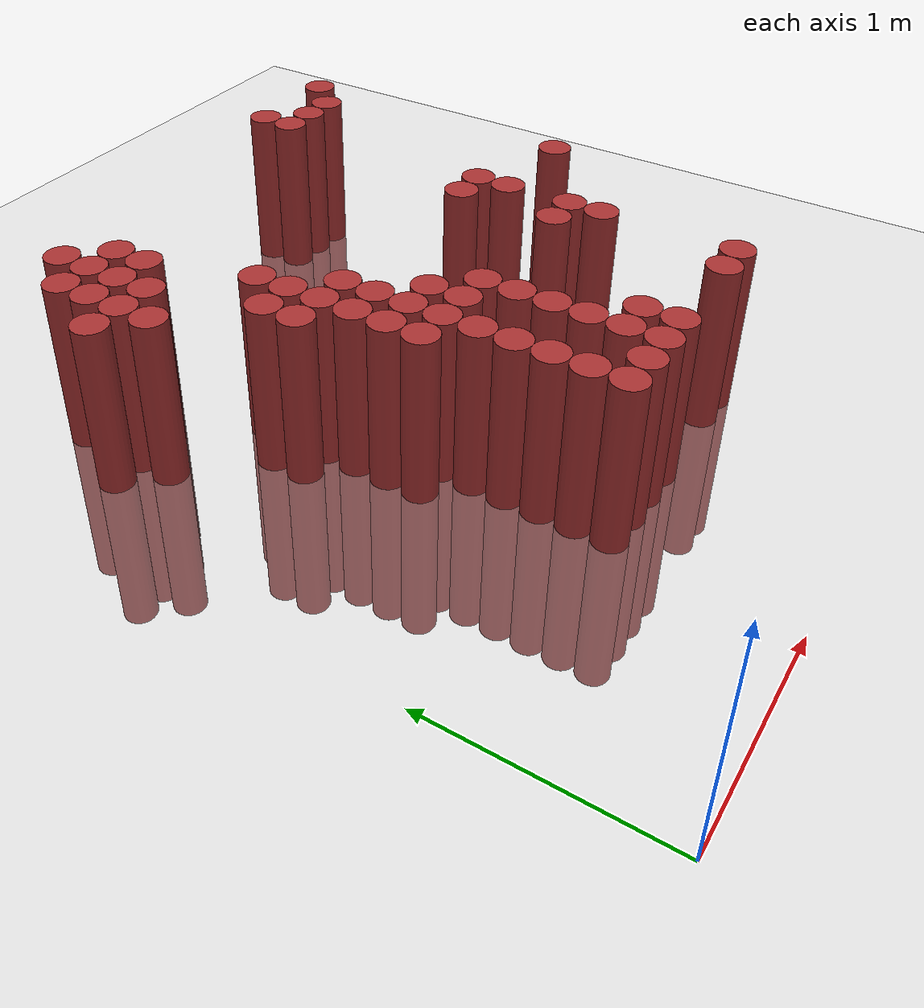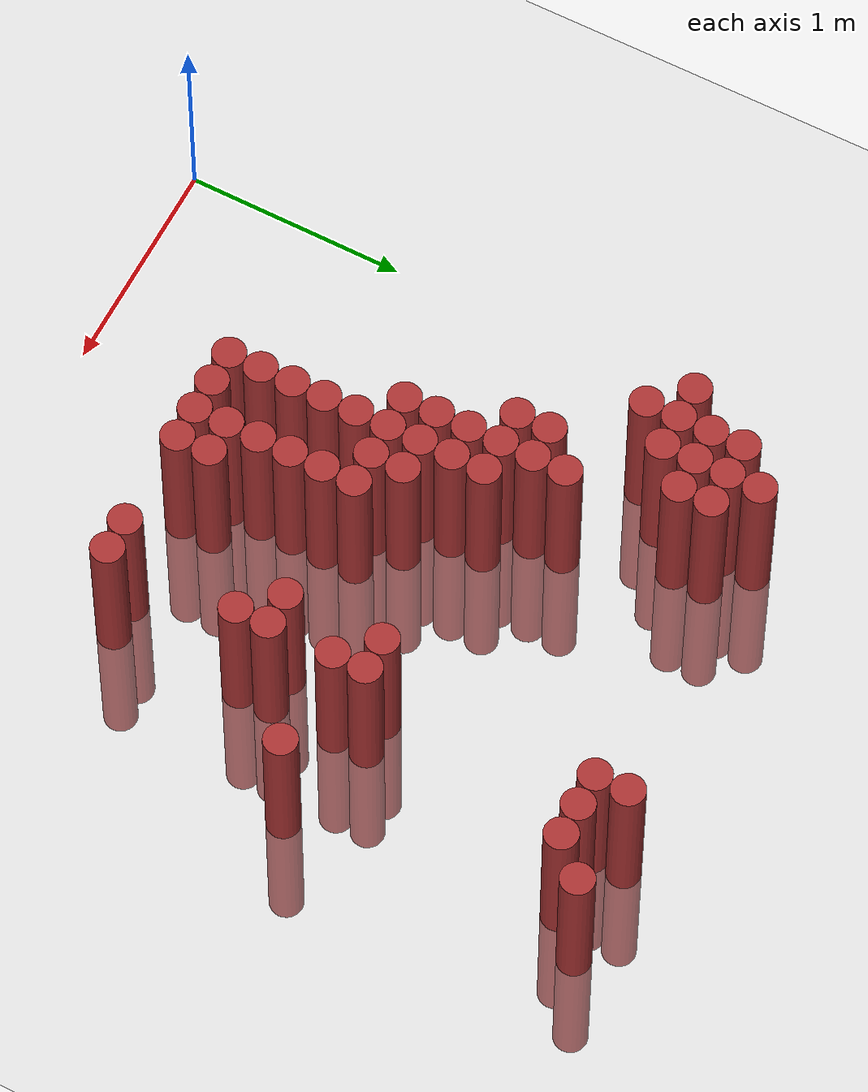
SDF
<sdf version="1.6">
 <world name="default">
  <model name="ground_plane">
   <static>1</static>
   <link name="link">
    <collision name="collision">
     <geometry><plane><normal>0 0 1</normal><size>100 100</size></plane></geometry>
     <surface><friction><ode><mu>100</mu><mu2>50</mu2></ode></friction></surface>
    </collision>
    <visual name="visual">
     <cast_shadows>0</cast_shadows>
     <geometry><plane><normal>0 0 1</normal><size>100 100</size></plane></geometry>
     <material>
      <script><uri>file://media/materials/scripts/gazebo.material</uri><name>Gazebo/Grey</name></script>
     </material>
    </visual>
   </link>
  </model>
  <model name="unit_cylinder_441">
   <static>1</static>
   <pose>0.325000 2.575000 0.000000 0.000000 0.000000 0.000000</pose>
   <link name="link">
    <inertial>
     <mass>1</mass>
     <inertia><ixx>0.145833</ixx><ixy>0</ixy><ixz>0</ixz><iyy>0.145833</iyy><iyz>0</iyz><izz>0.125</izz></inertia>
    </inertial>
    <collision name="collision">
     <geometry><cylinder><radius>0.075000</radius><length>1.5</length></cylinder></geometry>
    </collision>
    <visual name="visual">
     <geometry><cylinder><radius>0.075000</radius><length>1.5</length></cylinder></geometry>
     <material>
      <ambient>0.648000 0.192000 0.192000 1</ambient>
      <diffuse>0.648000 0.192000 0.192000 1</diffuse>
     </material>
     <material>
      <script><name>Gazebo/Grey</name><uri>file://media/materials/scripts/gazebo.material</uri></script>
     </material>
    </visual>
   </link>
  </model>
  <model name="unit_cylinder_442">
   <static>1</static>
   <pose>0.475000 2.425000 0.000000 0.000000 0.000000 0.000000</pose>
   <link name="link">
    <inertial>
     <mass>1</mass>
     <inertia><ixx>0.145833</ixx><ixy>0</ixy><ixz>0</ixz><iyy>0.145833</iyy><iyz>0</iyz><izz>0.125</izz></inertia>
    </inertial>
    <collision name="collision">
     <geometry><cylinder><radius>0.075000</radius><length>1.5</length></cylinder></geometry>
    </collision>
    <visual name="visual">
     <geometry><cylinder><radius>0.075000</radius><length>1.5</length></cylinder></geometry>
     <material>
      <ambient>0.648000 0.192000 0.192000 1</ambient>
      <diffuse>0.648000 0.192000 0.192000 1</diffuse>
     </material>
     <material>
      <script><name>Gazebo/Grey</name><uri>file://media/materials/scripts/gazebo.material</uri></script>
     </material>
    </visual>
   </link>
  </model>
  <model name="unit_cylinder_443">
   <static>1</static>
   <pose>0.475000 2.575000 0.000000 0.000000 0.000000 0.000000</pose>
   <link name="link">
    <inertial>
     <mass>1</mass>
     <inertia><ixx>0.145833</ixx><ixy>0</ixy><ixz>0</ixz><iyy>0.145833</iyy><iyz>0</iyz><izz>0.125</izz></inertia>
    </inertial>
    <collision name="collision">
     <geometry><cylinder><radius>0.075000</radius><length>1.5</length></cylinder></geometry>
    </collision>
    <visual name="visual">
     <geometry><cylinder><radius>0.075000</radius><length>1.5</length></cylinder></geometry>
     <material>
      <ambient>0.648000 0.192000 0.192000 1</ambient>
      <diffuse>0.648000 0.192000 0.192000 1</diffuse>
     </material>
     <material>
      <script><name>Gazebo/Grey</name><uri>file://media/materials/scripts/gazebo.material</uri></script>
     </material>
    </visual>
   </link>
  </model>
  <model name="unit_cylinder_444">
   <static>1</static>
   <pose>0.475000 2.725000 0.000000 0.000000 0.000000 0.000000</pose>
   <link name="link">
    <inertial>
     <mass>1</mass>
     <inertia><ixx>0.145833</ixx><ixy>0</ixy><ixz>0</ixz><iyy>0.145833</iyy><iyz>0</iyz><izz>0.125</izz></inertia>
    </inertial>
    <collision name="collision">
     <geometry><cylinder><radius>0.075000</radius><length>1.5</length></cylinder></geometry>
    </collision>
    <visual name="visual">
     <geometry><cylinder><radius>0.075000</radius><length>1.5</length></cylinder></geometry>
     <material>
      <ambient>0.648000 0.192000 0.192000 1</ambient>
      <diffuse>0.648000 0.192000 0.192000 1</diffuse>
     </material>
     <material>
      <script><name>Gazebo/Grey</name><uri>file://media/materials/scripts/gazebo.material</uri></script>
     </material>
    </visual>
   </link>
  </model>
  <model name="unit_cylinder_445">
   <static>1</static>
   <pose>0.475000 2.875000 0.000000 0.000000 0.000000 0.000000</pose>
   <link name="link">
    <inertial>
     <mass>1</mass>
     <inertia><ixx>0.145833</ixx><ixy>0</ixy><ixz>0</ixz><iyy>0.145833</iyy><iyz>0</iyz><izz>0.125</izz></inertia>
    </inertial>
    <collision name="collision">
     <geometry><cylinder><radius>0.075000</radius><length>1.5</length></cylinder></geometry>
    </collision>
    <visual name="visual">
     <geometry><cylinder><radius>0.075000</radius><length>1.5</length></cylinder></geometry>
     <material>
      <ambient>0.648000 0.192000 0.192000 1</ambient>
      <diffuse>0.648000 0.192000 0.192000 1</diffuse>
     </material>
     <material>
      <script><name>Gazebo/Grey</name><uri>file://media/materials/scripts/gazebo.material</uri></script>
     </material>
    </visual>
   </link>
  </model>
  <model name="unit_cylinder_447">
   <static>1</static>
   <pose>0.625000 2.575000 0.000000 0.000000 0.000000 0.000000</pose>
   <link name="link">
    <inertial>
     <mass>1</mass>
     <inertia><ixx>0.145833</ixx><ixy>0</ixy><ixz>0</ixz><iyy>0.145833</iyy><iyz>0</iyz><izz>0.125</izz></inertia>
    </inertial>
    <collision name="collision">
     <geometry><cylinder><radius>0.075000</radius><length>1.5</length></cylinder></geometry>
    </collision>
    <visual name="visual">
     <geometry><cylinder><radius>0.075000</radius><length>1.5</length></cylinder></geometry>
     <material>
      <ambient>0.648000 0.192000 0.192000 1</ambient>
      <diffuse>0.648000 0.192000 0.192000 1</diffuse>
     </material>
     <material>
      <script><name>Gazebo/Grey</name><uri>file://media/materials/scripts/gazebo.material</uri></script>
     </material>
    </visual>
   </link>
  </model>
  <model name="unit_cylinder_448">
   <static>1</static>
   <pose>0.625000 2.725000 0.000000 0.000000 0.000000 0.000000</pose>
   <link name="link">
    <inertial>
     <mass>1</mass>
     <inertia><ixx>0.145833</ixx><ixy>0</ixy><ixz>0</ixz><iyy>0.145833</iyy><iyz>0</iyz><izz>0.125</izz></inertia>
    </inertial>
    <collision name="collision">
     <geometry><cylinder><radius>0.075000</radius><length>1.5</length></cylinder></geometry>
    </collision>
    <visual name="visual">
     <geometry><cylinder><radius>0.075000</radius><length>1.5</length></cylinder></geometry>
     <material>
      <ambient>0.648000 0.192000 0.192000 1</ambient>
      <diffuse>0.648000 0.192000 0.192000 1</diffuse>
     </material>
     <material>
      <script><name>Gazebo/Grey</name><uri>file://media/materials/scripts/gazebo.material</uri></script>
     </material>
    </visual>
   </link>
  </model>
  <model name="unit_cylinder_449">
   <static>1</static>
   <pose>0.625000 2.875000 0.000000 0.000000 0.000000 0.000000</pose>
   <link name="link">
    <inertial>
     <mass>1</mass>
     <inertia><ixx>0.145833</ixx><ixy>0</ixy><ixz>0</ixz><iyy>0.145833</iyy><iyz>0</iyz><izz>0.125</izz></inertia>
    </inertial>
    <collision name="collision">
     <geometry><cylinder><radius>0.075000</radius><length>1.5</length></cylinder></geometry>
    </collision>
    <visual name="visual">
     <geometry><cylinder><radius>0.075000</radius><length>1.5</length></cylinder></geometry>
     <material>
      <ambient>0.648000 0.192000 0.192000 1</ambient>
      <diffuse>0.648000 0.192000 0.192000 1</diffuse>
     </material>
     <material>
      <script><name>Gazebo/Grey</name><uri>file://media/materials/scripts/gazebo.material</uri></script>
     </material>
    </visual>
   </link>
  </model>
  <model name="unit_cylinder_450">
   <static>1</static>
   <pose>0.625000 3.025000 0.000000 0.000000 0.000000 0.000000</pose>
   <link name="link">
    <inertial>
     <mass>1</mass>
     <inertia><ixx>0.145833</ixx><ixy>0</ixy><ixz>0</ixz><iyy>0.145833</iyy><iyz>0</iyz><izz>0.125</izz></inertia>
    </inertial>
    <collision name="collision">
     <geometry><cylinder><radius>0.075000</radius><length>1.5</length></cylinder></geometry>
    </collision>
    <visual name="visual">
     <geometry><cylinder><radius>0.075000</radius><length>1.5</length></cylinder></geometry>
     <material>
      <ambient>0.648000 0.192000 0.192000 1</ambient>
      <diffuse>0.648000 0.192000 0.192000 1</diffuse>
     </material>
     <material>
      <script><name>Gazebo/Grey</name><uri>file://media/materials/scripts/gazebo.material</uri></script>
     </material>
    </visual>
   </link>
  </model>
  <model name="unit_cylinder_453">
   <static>1</static>
   <pose>0.775000 1.975000 0.000000 0.000000 0.000000 0.000000</pose>
   <link name="link">
    <inertial>
     <mass>1</mass>
     <inertia><ixx>0.145833</ixx><ixy>0</ixy><ixz>0</ixz><iyy>0.145833</iyy><iyz>0</iyz><izz>0.125</izz></inertia>
    </inertial>
    <collision name="collision">
     <geometry><cylinder><radius>0.075000</radius><length>1.5</length></cylinder></geometry>
    </collision>
    <visual name="visual">
     <geometry><cylinder><radius>0.075000</radius><length>1.5</length></cylinder></geometry>
     <material>
      <ambient>0.648000 0.192000 0.192000 1</ambient>
      <diffuse>0.648000 0.192000 0.192000 1</diffuse>
     </material>
     <material>
      <script><name>Gazebo/Grey</name><uri>file://media/materials/scripts/gazebo.material</uri></script>
     </material>
    </visual>
   </link>
  </model>
  <model name="unit_cylinder_454">
   <static>1</static>
   <pose>0.775000 2.125000 0.000000 0.000000 0.000000 0.000000</pose>
   <link name="link">
    <inertial>
     <mass>1</mass>
     <inertia><ixx>0.145833</ixx><ixy>0</ixy><ixz>0</ixz><iyy>0.145833</iyy><iyz>0</iyz><izz>0.125</izz></inertia>
    </inertial>
    <collision name="collision">
     <geometry><cylinder><radius>0.075000</radius><length>1.5</length></cylinder></geometry>
    </collision>
    <visual name="visual">
     <geometry><cylinder><radius>0.075000</radius><length>1.5</length></cylinder></geometry>
     <material>
      <ambient>0.648000 0.192000 0.192000 1</ambient>
      <diffuse>0.648000 0.192000 0.192000 1</diffuse>
     </material>
     <material>
      <script><name>Gazebo/Grey</name><uri>file://media/materials/scripts/gazebo.material</uri></script>
     </material>
    </visual>
   </link>
  </model>
  <model name="unit_cylinder_455">
   <static>1</static>
   <pose>0.775000 2.725000 0.000000 0.000000 0.000000 0.000000</pose>
   <link name="link">
    <inertial>
     <mass>1</mass>
     <inertia><ixx>0.145833</ixx><ixy>0</ixy><ixz>0</ixz><iyy>0.145833</iyy><iyz>0</iyz><izz>0.125</izz></inertia>
    </inertial>
    <collision name="collision">
     <geometry><cylinder><radius>0.075000</radius><length>1.5</length></cylinder></geometry>
    </collision>
    <visual name="visual">
     <geometry><cylinder><radius>0.075000</radius><length>1.5</length></cylinder></geometry>
     <material>
      <ambient>0.648000 0.192000 0.192000 1</ambient>
      <diffuse>0.648000 0.192000 0.192000 1</diffuse>
     </material>
     <material>
      <script><name>Gazebo/Grey</name><uri>file://media/materials/scripts/gazebo.material</uri></script>
     </material>
    </visual>
   </link>
  </model>
  <model name="unit_cylinder_456">
   <static>1</static>
   <pose>0.775000 2.875000 0.000000 0.000000 0.000000 0.000000</pose>
   <link name="link">
    <inertial>
     <mass>1</mass>
     <inertia><ixx>0.145833</ixx><ixy>0</ixy><ixz>0</ixz><iyy>0.145833</iyy><iyz>0</iyz><izz>0.125</izz></inertia>
    </inertial>
    <collision name="collision">
     <geometry><cylinder><radius>0.075000</radius><length>1.5</length></cylinder></geometry>
    </collision>
    <visual name="visual">
     <geometry><cylinder><radius>0.075000</radius><length>1.5</length></cylinder></geometry>
     <material>
      <ambient>0.648000 0.192000 0.192000 1</ambient>
      <diffuse>0.648000 0.192000 0.192000 1</diffuse>
     </material>
     <material>
      <script><name>Gazebo/Grey</name><uri>file://media/materials/scripts/gazebo.material</uri></script>
     </material>
    </visual>
   </link>
  </model>
  <model name="unit_cylinder_462">
   <static>1</static>
   <pose>0.925000 1.525000 0.000000 0.000000 0.000000 0.000000</pose>
   <link name="link">
    <inertial>
     <mass>1</mass>
     <inertia><ixx>0.145833</ixx><ixy>0</ixy><ixz>0</ixz><iyy>0.145833</iyy><iyz>0</iyz><izz>0.125</izz></inertia>
    </inertial>
    <collision name="collision">
     <geometry><cylinder><radius>0.075000</radius><length>1.5</length></cylinder></geometry>
    </collision>
    <visual name="visual">
     <geometry><cylinder><radius>0.075000</radius><length>1.5</length></cylinder></geometry>
     <material>
      <ambient>0.648000 0.192000 0.192000 1</ambient>
      <diffuse>0.648000 0.192000 0.192000 1</diffuse>
     </material>
     <material>
      <script><name>Gazebo/Grey</name><uri>file://media/materials/scripts/gazebo.material</uri></script>
     </material>
    </visual>
   </link>
  </model>
  <model name="unit_cylinder_463">
   <static>1</static>
   <pose>0.925000 1.675000 0.000000 0.000000 0.000000 0.000000</pose>
   <link name="link">
    <inertial>
     <mass>1</mass>
     <inertia><ixx>0.145833</ixx><ixy>0</ixy><ixz>0</ixz><iyy>0.145833</iyy><iyz>0</iyz><izz>0.125</izz></inertia>
    </inertial>
    <collision name="collision">
     <geometry><cylinder><radius>0.075000</radius><length>1.5</length></cylinder></geometry>
    </collision>
    <visual name="visual">
     <geometry><cylinder><radius>0.075000</radius><length>1.5</length></cylinder></geometry>
     <material>
      <ambient>0.648000 0.192000 0.192000 1</ambient>
      <diffuse>0.648000 0.192000 0.192000 1</diffuse>
     </material>
     <material>
      <script><name>Gazebo/Grey</name><uri>file://media/materials/scripts/gazebo.material</uri></script>
     </material>
    </visual>
   </link>
  </model>
  <model name="unit_cylinder_464">
   <static>1</static>
   <pose>0.925000 1.825000 0.000000 0.000000 0.000000 0.000000</pose>
   <link name="link">
    <inertial>
     <mass>1</mass>
     <inertia><ixx>0.145833</ixx><ixy>0</ixy><ixz>0</ixz><iyy>0.145833</iyy><iyz>0</iyz><izz>0.125</izz></inertia>
    </inertial>
    <collision name="collision">
     <geometry><cylinder><radius>0.075000</radius><length>1.5</length></cylinder></geometry>
    </collision>
    <visual name="visual">
     <geometry><cylinder><radius>0.075000</radius><length>1.5</length></cylinder></geometry>
     <material>
      <ambient>0.648000 0.192000 0.192000 1</ambient>
      <diffuse>0.648000 0.192000 0.192000 1</diffuse>
     </material>
     <material>
      <script><name>Gazebo/Grey</name><uri>file://media/materials/scripts/gazebo.material</uri></script>
     </material>
    </visual>
   </link>
  </model>
  <model name="unit_cylinder_465">
   <static>1</static>
   <pose>0.925000 1.975000 0.000000 0.000000 0.000000 0.000000</pose>
   <link name="link">
    <inertial>
     <mass>1</mass>
     <inertia><ixx>0.145833</ixx><ixy>0</ixy><ixz>0</ixz><iyy>0.145833</iyy><iyz>0</iyz><izz>0.125</izz></inertia>
    </inertial>
    <collision name="collision">
     <geometry><cylinder><radius>0.075000</radius><length>1.5</length></cylinder></geometry>
    </collision>
    <visual name="visual">
     <geometry><cylinder><radius>0.075000</radius><length>1.5</length></cylinder></geometry>
     <material>
      <ambient>0.648000 0.192000 0.192000 1</ambient>
      <diffuse>0.648000 0.192000 0.192000 1</diffuse>
     </material>
     <material>
      <script><name>Gazebo/Grey</name><uri>file://media/materials/scripts/gazebo.material</uri></script>
     </material>
    </visual>
   </link>
  </model>
  <model name="unit_cylinder_466">
   <static>1</static>
   <pose>0.925000 2.125000 0.000000 0.000000 0.000000 0.000000</pose>
   <link name="link">
    <inertial>
     <mass>1</mass>
     <inertia><ixx>0.145833</ixx><ixy>0</ixy><ixz>0</ixz><iyy>0.145833</iyy><iyz>0</iyz><izz>0.125</izz></inertia>
    </inertial>
    <collision name="collision">
     <geometry><cylinder><radius>0.075000</radius><length>1.5</length></cylinder></geometry>
    </collision>
    <visual name="visual">
     <geometry><cylinder><radius>0.075000</radius><length>1.5</length></cylinder></geometry>
     <material>
      <ambient>0.648000 0.192000 0.192000 1</ambient>
      <diffuse>0.648000 0.192000 0.192000 1</diffuse>
     </material>
     <material>
      <script><name>Gazebo/Grey</name><uri>file://media/materials/scripts/gazebo.material</uri></script>
     </material>
    </visual>
   </link>
  </model>
  <model name="unit_cylinder_467">
   <static>1</static>
   <pose>0.925000 2.275000 0.000000 0.000000 0.000000 0.000000</pose>
   <link name="link">
    <inertial>
     <mass>1</mass>
     <inertia><ixx>0.145833</ixx><ixy>0</ixy><ixz>0</ixz><iyy>0.145833</iyy><iyz>0</iyz><izz>0.125</izz></inertia>
    </inertial>
    <collision name="collision">
     <geometry><cylinder><radius>0.075000</radius><length>1.5</length></cylinder></geometry>
    </collision>
    <visual name="visual">
     <geometry><cylinder><radius>0.075000</radius><length>1.5</length></cylinder></geometry>
     <material>
      <ambient>0.648000 0.192000 0.192000 1</ambient>
      <diffuse>0.648000 0.192000 0.192000 1</diffuse>
     </material>
     <material>
      <script><name>Gazebo/Grey</name><uri>file://media/materials/scripts/gazebo.material</uri></script>
     </material>
    </visual>
   </link>
  </model>
  <model name="unit_cylinder_479">
   <static>1</static>
   <pose>1.075000 0.775000 0.000000 0.000000 0.000000 0.000000</pose>
   <link name="link">
    <inertial>
     <mass>1</mass>
     <inertia><ixx>0.145833</ixx><ixy>0</ixy><ixz>0</ixz><iyy>0.145833</iyy><iyz>0</iyz><izz>0.125</izz></inertia>
    </inertial>
    <collision name="collision">
     <geometry><cylinder><radius>0.075000</radius><length>1.5</length></cylinder></geometry>
    </collision>
    <visual name="visual">
     <geometry><cylinder><radius>0.075000</radius><length>1.5</length></cylinder></geometry>
     <material>
      <ambient>0.648000 0.192000 0.192000 1</ambient>
      <diffuse>0.648000 0.192000 0.192000 1</diffuse>
     </material>
     <material>
      <script><name>Gazebo/Grey</name><uri>file://media/materials/scripts/gazebo.material</uri></script>
     </material>
    </visual>
   </link>
  </model>
  <model name="unit_cylinder_480">
   <static>1</static>
   <pose>1.075000 0.925000 0.000000 0.000000 0.000000 0.000000</pose>
   <link name="link">
    <inertial>
     <mass>1</mass>
     <inertia><ixx>0.145833</ixx><ixy>0</ixy><ixz>0</ixz><iyy>0.145833</iyy><iyz>0</iyz><izz>0.125</izz></inertia>
    </inertial>
    <collision name="collision">
     <geometry><cylinder><radius>0.075000</radius><length>1.5</length></cylinder></geometry>
    </collision>
    <visual name="visual">
     <geometry><cylinder><radius>0.075000</radius><length>1.5</length></cylinder></geometry>
     <material>
      <ambient>0.648000 0.192000 0.192000 1</ambient>
      <diffuse>0.648000 0.192000 0.192000 1</diffuse>
     </material>
     <material>
      <script><name>Gazebo/Grey</name><uri>file://media/materials/scripts/gazebo.material</uri></script>
     </material>
    </visual>
   </link>
  </model>
  <model name="unit_cylinder_481">
   <static>1</static>
   <pose>1.075000 1.075000 0.000000 0.000000 0.000000 0.000000</pose>
   <link name="link">
    <inertial>
     <mass>1</mass>
     <inertia><ixx>0.145833</ixx><ixy>0</ixy><ixz>0</ixz><iyy>0.145833</iyy><iyz>0</iyz><izz>0.125</izz></inertia>
    </inertial>
    <collision name="collision">
     <geometry><cylinder><radius>0.075000</radius><length>1.5</length></cylinder></geometry>
    </collision>
    <visual name="visual">
     <geometry><cylinder><radius>0.075000</radius><length>1.5</length></cylinder></geometry>
     <material>
      <ambient>0.648000 0.192000 0.192000 1</ambient>
      <diffuse>0.648000 0.192000 0.192000 1</diffuse>
     </material>
     <material>
      <script><name>Gazebo/Grey</name><uri>file://media/materials/scripts/gazebo.material</uri></script>
     </material>
    </visual>
   </link>
  </model>
  <model name="unit_cylinder_482">
   <static>1</static>
   <pose>1.075000 1.225000 0.000000 0.000000 0.000000 0.000000</pose>
   <link name="link">
    <inertial>
     <mass>1</mass>
     <inertia><ixx>0.145833</ixx><ixy>0</ixy><ixz>0</ixz><iyy>0.145833</iyy><iyz>0</iyz><izz>0.125</izz></inertia>
    </inertial>
    <collision name="collision">
     <geometry><cylinder><radius>0.075000</radius><length>1.5</length></cylinder></geometry>
    </collision>
    <visual name="visual">
     <geometry><cylinder><radius>0.075000</radius><length>1.5</length></cylinder></geometry>
     <material>
      <ambient>0.648000 0.192000 0.192000 1</ambient>
      <diffuse>0.648000 0.192000 0.192000 1</diffuse>
     </material>
     <material>
      <script><name>Gazebo/Grey</name><uri>file://media/materials/scripts/gazebo.material</uri></script>
     </material>
    </visual>
   </link>
  </model>
  <model name="unit_cylinder_483">
   <static>1</static>
   <pose>1.075000 1.375000 0.000000 0.000000 0.000000 0.000000</pose>
   <link name="link">
    <inertial>
     <mass>1</mass>
     <inertia><ixx>0.145833</ixx><ixy>0</ixy><ixz>0</ixz><iyy>0.145833</iyy><iyz>0</iyz><izz>0.125</izz></inertia>
    </inertial>
    <collision name="collision">
     <geometry><cylinder><radius>0.075000</radius><length>1.5</length></cylinder></geometry>
    </collision>
    <visual name="visual">
     <geometry><cylinder><radius>0.075000</radius><length>1.5</length></cylinder></geometry>
     <material>
      <ambient>0.648000 0.192000 0.192000 1</ambient>
      <diffuse>0.648000 0.192000 0.192000 1</diffuse>
     </material>
     <material>
      <script><name>Gazebo/Grey</name><uri>file://media/materials/scripts/gazebo.material</uri></script>
     </material>
    </visual>
   </link>
  </model>
  <model name="unit_cylinder_484">
   <static>1</static>
   <pose>1.075000 1.525000 0.000000 0.000000 0.000000 0.000000</pose>
   <link name="link">
    <inertial>
     <mass>1</mass>
     <inertia><ixx>0.145833</ixx><ixy>0</ixy><ixz>0</ixz><iyy>0.145833</iyy><iyz>0</iyz><izz>0.125</izz></inertia>
    </inertial>
    <collision name="collision">
     <geometry><cylinder><radius>0.075000</radius><length>1.5</length></cylinder></geometry>
    </collision>
    <visual name="visual">
     <geometry><cylinder><radius>0.075000</radius><length>1.5</length></cylinder></geometry>
     <material>
      <ambient>0.648000 0.192000 0.192000 1</ambient>
      <diffuse>0.648000 0.192000 0.192000 1</diffuse>
     </material>
     <material>
      <script><name>Gazebo/Grey</name><uri>file://media/materials/scripts/gazebo.material</uri></script>
     </material>
    </visual>
   </link>
  </model>
  <model name="unit_cylinder_485">
   <static>1</static>
   <pose>1.075000 1.675000 0.000000 0.000000 0.000000 0.000000</pose>
   <link name="link">
    <inertial>
     <mass>1</mass>
     <inertia><ixx>0.145833</ixx><ixy>0</ixy><ixz>0</ixz><iyy>0.145833</iyy><iyz>0</iyz><izz>0.125</izz></inertia>
    </inertial>
    <collision name="collision">
     <geometry><cylinder><radius>0.075000</radius><length>1.5</length></cylinder></geometry>
    </collision>
    <visual name="visual">
     <geometry><cylinder><radius>0.075000</radius><length>1.5</length></cylinder></geometry>
     <material>
      <ambient>0.648000 0.192000 0.192000 1</ambient>
      <diffuse>0.648000 0.192000 0.192000 1</diffuse>
     </material>
     <material>
      <script><name>Gazebo/Grey</name><uri>file://media/materials/scripts/gazebo.material</uri></script>
     </material>
    </visual>
   </link>
  </model>
  <model name="unit_cylinder_486">
   <static>1</static>
   <pose>1.075000 1.825000 0.000000 0.000000 0.000000 0.000000</pose>
   <link name="link">
    <inertial>
     <mass>1</mass>
     <inertia><ixx>0.145833</ixx><ixy>0</ixy><ixz>0</ixz><iyy>0.145833</iyy><iyz>0</iyz><izz>0.125</izz></inertia>
    </inertial>
    <collision name="collision">
     <geometry><cylinder><radius>0.075000</radius><length>1.5</length></cylinder></geometry>
    </collision>
    <visual name="visual">
     <geometry><cylinder><radius>0.075000</radius><length>1.5</length></cylinder></geometry>
     <material>
      <ambient>0.648000 0.192000 0.192000 1</ambient>
      <diffuse>0.648000 0.192000 0.192000 1</diffuse>
     </material>
     <material>
      <script><name>Gazebo/Grey</name><uri>file://media/materials/scripts/gazebo.material</uri></script>
     </material>
    </visual>
   </link>
  </model>
  <model name="unit_cylinder_487">
   <static>1</static>
   <pose>1.075000 1.975000 0.000000 0.000000 0.000000 0.000000</pose>
   <link name="link">
    <inertial>
     <mass>1</mass>
     <inertia><ixx>0.145833</ixx><ixy>0</ixy><ixz>0</ixz><iyy>0.145833</iyy><iyz>0</iyz><izz>0.125</izz></inertia>
    </inertial>
    <collision name="collision">
     <geometry><cylinder><radius>0.075000</radius><length>1.5</length></cylinder></geometry>
    </collision>
    <visual name="visual">
     <geometry><cylinder><radius>0.075000</radius><length>1.5</length></cylinder></geometry>
     <material>
      <ambient>0.648000 0.192000 0.192000 1</ambient>
      <diffuse>0.648000 0.192000 0.192000 1</diffuse>
     </material>
     <material>
      <script><name>Gazebo/Grey</name><uri>file://media/materials/scripts/gazebo.material</uri></script>
     </material>
    </visual>
   </link>
  </model>
  <model name="unit_cylinder_497">
   <static>1</static>
   <pose>1.225000 0.775000 0.000000 0.000000 0.000000 0.000000</pose>
   <link name="link">
    <inertial>
     <mass>1</mass>
     <inertia><ixx>0.145833</ixx><ixy>0</ixy><ixz>0</ixz><iyy>0.145833</iyy><iyz>0</iyz><izz>0.125</izz></inertia>
    </inertial>
    <collision name="collision">
     <geometry><cylinder><radius>0.075000</radius><length>1.5</length></cylinder></geometry>
    </collision>
    <visual name="visual">
     <geometry><cylinder><radius>0.075000</radius><length>1.5</length></cylinder></geometry>
     <material>
      <ambient>0.648000 0.192000 0.192000 1</ambient>
      <diffuse>0.648000 0.192000 0.192000 1</diffuse>
     </material>
     <material>
      <script><name>Gazebo/Grey</name><uri>file://media/materials/scripts/gazebo.material</uri></script>
     </material>
    </visual>
   </link>
  </model>
  <model name="unit_cylinder_498">
   <static>1</static>
   <pose>1.225000 1.525000 0.000000 0.000000 0.000000 0.000000</pose>
   <link name="link">
    <inertial>
     <mass>1</mass>
     <inertia><ixx>0.145833</ixx><ixy>0</ixy><ixz>0</ixz><iyy>0.145833</iyy><iyz>0</iyz><izz>0.125</izz></inertia>
    </inertial>
    <collision name="collision">
     <geometry><cylinder><radius>0.075000</radius><length>1.5</length></cylinder></geometry>
    </collision>
    <visual name="visual">
     <geometry><cylinder><radius>0.075000</radius><length>1.5</length></cylinder></geometry>
     <material>
      <ambient>0.648000 0.192000 0.192000 1</ambient>
      <diffuse>0.648000 0.192000 0.192000 1</diffuse>
     </material>
     <material>
      <script><name>Gazebo/Grey</name><uri>file://media/materials/scripts/gazebo.material</uri></script>
     </material>
    </visual>
   </link>
  </model>
  <model name="unit_cylinder_499">
   <static>1</static>
   <pose>1.225000 1.675000 0.000000 0.000000 0.000000 0.000000</pose>
   <link name="link">
    <inertial>
     <mass>1</mass>
     <inertia><ixx>0.145833</ixx><ixy>0</ixy><ixz>0</ixz><iyy>0.145833</iyy><iyz>0</iyz><izz>0.125</izz></inertia>
    </inertial>
    <collision name="collision">
     <geometry><cylinder><radius>0.075000</radius><length>1.5</length></cylinder></geometry>
    </collision>
    <visual name="visual">
     <geometry><cylinder><radius>0.075000</radius><length>1.5</length></cylinder></geometry>
     <material>
      <ambient>0.648000 0.192000 0.192000 1</ambient>
      <diffuse>0.648000 0.192000 0.192000 1</diffuse>
     </material>
     <material>
      <script><name>Gazebo/Grey</name><uri>file://media/materials/scripts/gazebo.material</uri></script>
     </material>
    </visual>
   </link>
  </model>
  <model name="unit_cylinder_505">
   <static>1</static>
   <pose>1.375000 0.775000 0.000000 0.000000 0.000000 0.000000</pose>
   <link name="link">
    <inertial>
     <mass>1</mass>
     <inertia><ixx>0.145833</ixx><ixy>0</ixy><ixz>0</ixz><iyy>0.145833</iyy><iyz>0</iyz><izz>0.125</izz></inertia>
    </inertial>
    <collision name="collision">
     <geometry><cylinder><radius>0.075000</radius><length>1.5</length></cylinder></geometry>
    </collision>
    <visual name="visual">
     <geometry><cylinder><radius>0.075000</radius><length>1.5</length></cylinder></geometry>
     <material>
      <ambient>0.648000 0.192000 0.192000 1</ambient>
      <diffuse>0.648000 0.192000 0.192000 1</diffuse>
     </material>
     <material>
      <script><name>Gazebo/Grey</name><uri>file://media/materials/scripts/gazebo.material</uri></script>
     </material>
    </visual>
   </link>
  </model>
  <model name="unit_cylinder_506">
   <static>1</static>
   <pose>1.375000 0.925000 0.000000 0.000000 0.000000 0.000000</pose>
   <link name="link">
    <inertial>
     <mass>1</mass>
     <inertia><ixx>0.145833</ixx><ixy>0</ixy><ixz>0</ixz><iyy>0.145833</iyy><iyz>0</iyz><izz>0.125</izz></inertia>
    </inertial>
    <collision name="collision">
     <geometry><cylinder><radius>0.075000</radius><length>1.5</length></cylinder></geometry>
    </collision>
    <visual name="visual">
     <geometry><cylinder><radius>0.075000</radius><length>1.5</length></cylinder></geometry>
     <material>
      <ambient>0.648000 0.192000 0.192000 1</ambient>
      <diffuse>0.648000 0.192000 0.192000 1</diffuse>
     </material>
     <material>
      <script><name>Gazebo/Grey</name><uri>file://media/materials/scripts/gazebo.material</uri></script>
     </material>
    </visual>
   </link>
  </model>
  <model name="unit_cylinder_507">
   <static>1</static>
   <pose>1.375000 1.075000 0.000000 0.000000 0.000000 0.000000</pose>
   <link name="link">
    <inertial>
     <mass>1</mass>
     <inertia><ixx>0.145833</ixx><ixy>0</ixy><ixz>0</ixz><iyy>0.145833</iyy><iyz>0</iyz><izz>0.125</izz></inertia>
    </inertial>
    <collision name="collision">
     <geometry><cylinder><radius>0.075000</radius><length>1.5</length></cylinder></geometry>
    </collision>
    <visual name="visual">
     <geometry><cylinder><radius>0.075000</radius><length>1.5</length></cylinder></geometry>
     <material>
      <ambient>0.648000 0.192000 0.192000 1</ambient>
      <diffuse>0.648000 0.192000 0.192000 1</diffuse>
     </material>
     <material>
      <script><name>Gazebo/Grey</name><uri>file://media/materials/scripts/gazebo.material</uri></script>
     </material>
    </visual>
   </link>
  </model>
  <model name="unit_cylinder_508">
   <static>1</static>
   <pose>1.375000 1.225000 0.000000 0.000000 0.000000 0.000000</pose>
   <link name="link">
    <inertial>
     <mass>1</mass>
     <inertia><ixx>0.145833</ixx><ixy>0</ixy><ixz>0</ixz><iyy>0.145833</iyy><iyz>0</iyz><izz>0.125</izz></inertia>
    </inertial>
    <collision name="collision">
     <geometry><cylinder><radius>0.075000</radius><length>1.5</length></cylinder></geometry>
    </collision>
    <visual name="visual">
     <geometry><cylinder><radius>0.075000</radius><length>1.5</length></cylinder></geometry>
     <material>
      <ambient>0.648000 0.192000 0.192000 1</ambient>
      <diffuse>0.648000 0.192000 0.192000 1</diffuse>
     </material>
     <material>
      <script><name>Gazebo/Grey</name><uri>file://media/materials/scripts/gazebo.material</uri></script>
     </material>
    </visual>
   </link>
  </model>
  <model name="unit_cylinder_509">
   <static>1</static>
   <pose>1.375000 1.375000 0.000000 0.000000 0.000000 0.000000</pose>
   <link name="link">
    <inertial>
     <mass>1</mass>
     <inertia><ixx>0.145833</ixx><ixy>0</ixy><ixz>0</ixz><iyy>0.145833</iyy><iyz>0</iyz><izz>0.125</izz></inertia>
    </inertial>
    <collision name="collision">
     <geometry><cylinder><radius>0.075000</radius><length>1.5</length></cylinder></geometry>
    </collision>
    <visual name="visual">
     <geometry><cylinder><radius>0.075000</radius><length>1.5</length></cylinder></geometry>
     <material>
      <ambient>0.648000 0.192000 0.192000 1</ambient>
      <diffuse>0.648000 0.192000 0.192000 1</diffuse>
     </material>
     <material>
      <script><name>Gazebo/Grey</name><uri>file://media/materials/scripts/gazebo.material</uri></script>
     </material>
    </visual>
   </link>
  </model>
  <model name="unit_cylinder_510">
   <static>1</static>
   <pose>1.375000 1.525000 0.000000 0.000000 0.000000 0.000000</pose>
   <link name="link">
    <inertial>
     <mass>1</mass>
     <inertia><ixx>0.145833</ixx><ixy>0</ixy><ixz>0</ixz><iyy>0.145833</iyy><iyz>0</iyz><izz>0.125</izz></inertia>
    </inertial>
    <collision name="collision">
     <geometry><cylinder><radius>0.075000</radius><length>1.5</length></cylinder></geometry>
    </collision>
    <visual name="visual">
     <geometry><cylinder><radius>0.075000</radius><length>1.5</length></cylinder></geometry>
     <material>
      <ambient>0.648000 0.192000 0.192000 1</ambient>
      <diffuse>0.648000 0.192000 0.192000 1</diffuse>
     </material>
     <material>
      <script><name>Gazebo/Grey</name><uri>file://media/materials/scripts/gazebo.material</uri></script>
     </material>
    </visual>
   </link>
  </model>
  <model name="unit_cylinder_514">
   <static>1</static>
   <pose>1.525000 0.775000 0.000000 0.000000 0.000000 0.000000</pose>
   <link name="link">
    <inertial>
     <mass>1</mass>
     <inertia><ixx>0.145833</ixx><ixy>0</ixy><ixz>0</ixz><iyy>0.145833</iyy><iyz>0</iyz><izz>0.125</izz></inertia>
    </inertial>
    <collision name="collision">
     <geometry><cylinder><radius>0.075000</radius><length>1.5</length></cylinder></geometry>
    </collision>
    <visual name="visual">
     <geometry><cylinder><radius>0.075000</radius><length>1.5</length></cylinder></geometry>
     <material>
      <ambient>0.648000 0.192000 0.192000 1</ambient>
      <diffuse>0.648000 0.192000 0.192000 1</diffuse>
     </material>
     <material>
      <script><name>Gazebo/Grey</name><uri>file://media/materials/scripts/gazebo.material</uri></script>
     </material>
    </visual>
   </link>
  </model>
  <model name="unit_cylinder_515">
   <static>1</static>
   <pose>1.525000 0.925000 0.000000 0.000000 0.000000 0.000000</pose>
   <link name="link">
    <inertial>
     <mass>1</mass>
     <inertia><ixx>0.145833</ixx><ixy>0</ixy><ixz>0</ixz><iyy>0.145833</iyy><iyz>0</iyz><izz>0.125</izz></inertia>
    </inertial>
    <collision name="collision">
     <geometry><cylinder><radius>0.075000</radius><length>1.5</length></cylinder></geometry>
    </collision>
    <visual name="visual">
     <geometry><cylinder><radius>0.075000</radius><length>1.5</length></cylinder></geometry>
     <material>
      <ambient>0.648000 0.192000 0.192000 1</ambient>
      <diffuse>0.648000 0.192000 0.192000 1</diffuse>
     </material>
     <material>
      <script><name>Gazebo/Grey</name><uri>file://media/materials/scripts/gazebo.material</uri></script>
     </material>
    </visual>
   </link>
  </model>
  <model name="unit_cylinder_537">
   <static>1</static>
   <pose>1.975000 0.775000 0.000000 0.000000 0.000000 0.000000</pose>
   <link name="link">
    <inertial>
     <mass>1</mass>
     <inertia><ixx>0.145833</ixx><ixy>0</ixy><ixz>0</ixz><iyy>0.145833</iyy><iyz>0</iyz><izz>0.125</izz></inertia>
    </inertial>
    <collision name="collision">
     <geometry><cylinder><radius>0.075000</radius><length>1.5</length></cylinder></geometry>
    </collision>
    <visual name="visual">
     <geometry><cylinder><radius>0.075000</radius><length>1.5</length></cylinder></geometry>
     <material>
      <ambient>0.648000 0.192000 0.192000 1</ambient>
      <diffuse>0.648000 0.192000 0.192000 1</diffuse>
     </material>
     <material>
      <script><name>Gazebo/Grey</name><uri>file://media/materials/scripts/gazebo.material</uri></script>
     </material>
    </visual>
   </link>
  </model>
  <model name="unit_cylinder_538">
   <static>1</static>
   <pose>1.975000 1.525000 0.000000 0.000000 0.000000 0.000000</pose>
   <link name="link">
    <inertial>
     <mass>1</mass>
     <inertia><ixx>0.145833</ixx><ixy>0</ixy><ixz>0</ixz><iyy>0.145833</iyy><iyz>0</iyz><izz>0.125</izz></inertia>
    </inertial>
    <collision name="collision">
     <geometry><cylinder><radius>0.075000</radius><length>1.5</length></cylinder></geometry>
    </collision>
    <visual name="visual">
     <geometry><cylinder><radius>0.075000</radius><length>1.5</length></cylinder></geometry>
     <material>
      <ambient>0.648000 0.192000 0.192000 1</ambient>
      <diffuse>0.648000 0.192000 0.192000 1</diffuse>
     </material>
     <material>
      <script><name>Gazebo/Grey</name><uri>file://media/materials/scripts/gazebo.material</uri></script>
     </material>
    </visual>
   </link>
  </model>
  <model name="unit_cylinder_539">
   <static>1</static>
   <pose>1.975000 1.975000 0.000000 0.000000 0.000000 0.000000</pose>
   <link name="link">
    <inertial>
     <mass>1</mass>
     <inertia><ixx>0.145833</ixx><ixy>0</ixy><ixz>0</ixz><iyy>0.145833</iyy><iyz>0</iyz><izz>0.125</izz></inertia>
    </inertial>
    <collision name="collision">
     <geometry><cylinder><radius>0.075000</radius><length>1.5</length></cylinder></geometry>
    </collision>
    <visual name="visual">
     <geometry><cylinder><radius>0.075000</radius><length>1.5</length></cylinder></geometry>
     <material>
      <ambient>0.648000 0.192000 0.192000 1</ambient>
      <diffuse>0.648000 0.192000 0.192000 1</diffuse>
     </material>
     <material>
      <script><name>Gazebo/Grey</name><uri>file://media/materials/scripts/gazebo.material</uri></script>
     </material>
    </visual>
   </link>
  </model>
  <model name="unit_cylinder_550">
   <static>1</static>
   <pose>2.125000 0.775000 0.000000 0.000000 0.000000 0.000000</pose>
   <link name="link">
    <inertial>
     <mass>1</mass>
     <inertia><ixx>0.145833</ixx><ixy>0</ixy><ixz>0</ixz><iyy>0.145833</iyy><iyz>0</iyz><izz>0.125</izz></inertia>
    </inertial>
    <collision name="collision">
     <geometry><cylinder><radius>0.075000</radius><length>1.5</length></cylinder></geometry>
    </collision>
    <visual name="visual">
     <geometry><cylinder><radius>0.075000</radius><length>1.5</length></cylinder></geometry>
     <material>
      <ambient>0.648000 0.192000 0.192000 1</ambient>
      <diffuse>0.648000 0.192000 0.192000 1</diffuse>
     </material>
     <material>
      <script><name>Gazebo/Grey</name><uri>file://media/materials/scripts/gazebo.material</uri></script>
     </material>
    </visual>
   </link>
  </model>
  <model name="unit_cylinder_551">
   <static>1</static>
   <pose>2.125000 1.375000 0.000000 0.000000 0.000000 0.000000</pose>
   <link name="link">
    <inertial>
     <mass>1</mass>
     <inertia><ixx>0.145833</ixx><ixy>0</ixy><ixz>0</ixz><iyy>0.145833</iyy><iyz>0</iyz><izz>0.125</izz></inertia>
    </inertial>
    <collision name="collision">
     <geometry><cylinder><radius>0.075000</radius><length>1.5</length></cylinder></geometry>
    </collision>
    <visual name="visual">
     <geometry><cylinder><radius>0.075000</radius><length>1.5</length></cylinder></geometry>
     <material>
      <ambient>0.648000 0.192000 0.192000 1</ambient>
      <diffuse>0.648000 0.192000 0.192000 1</diffuse>
     </material>
     <material>
      <script><name>Gazebo/Grey</name><uri>file://media/materials/scripts/gazebo.material</uri></script>
     </material>
    </visual>
   </link>
  </model>
  <model name="unit_cylinder_552">
   <static>1</static>
   <pose>2.125000 1.525000 0.000000 0.000000 0.000000 0.000000</pose>
   <link name="link">
    <inertial>
     <mass>1</mass>
     <inertia><ixx>0.145833</ixx><ixy>0</ixy><ixz>0</ixz><iyy>0.145833</iyy><iyz>0</iyz><izz>0.125</izz></inertia>
    </inertial>
    <collision name="collision">
     <geometry><cylinder><radius>0.075000</radius><length>1.5</length></cylinder></geometry>
    </collision>
    <visual name="visual">
     <geometry><cylinder><radius>0.075000</radius><length>1.5</length></cylinder></geometry>
     <material>
      <ambient>0.648000 0.192000 0.192000 1</ambient>
      <diffuse>0.648000 0.192000 0.192000 1</diffuse>
     </material>
     <material>
      <script><name>Gazebo/Grey</name><uri>file://media/materials/scripts/gazebo.material</uri></script>
     </material>
    </visual>
   </link>
  </model>
  <model name="unit_cylinder_553">
   <static>1</static>
   <pose>2.125000 1.825000 0.000000 0.000000 0.000000 0.000000</pose>
   <link name="link">
    <inertial>
     <mass>1</mass>
     <inertia><ixx>0.145833</ixx><ixy>0</ixy><ixz>0</ixz><iyy>0.145833</iyy><iyz>0</iyz><izz>0.125</izz></inertia>
    </inertial>
    <collision name="collision">
     <geometry><cylinder><radius>0.075000</radius><length>1.5</length></cylinder></geometry>
    </collision>
    <visual name="visual">
     <geometry><cylinder><radius>0.075000</radius><length>1.5</length></cylinder></geometry>
     <material>
      <ambient>0.648000 0.192000 0.192000 1</ambient>
      <diffuse>0.648000 0.192000 0.192000 1</diffuse>
     </material>
     <material>
      <script><name>Gazebo/Grey</name><uri>file://media/materials/scripts/gazebo.material</uri></script>
     </material>
    </visual>
   </link>
  </model>
  <model name="unit_cylinder_554">
   <static>1</static>
   <pose>2.125000 1.975000 0.000000 0.000000 0.000000 0.000000</pose>
   <link name="link">
    <inertial>
     <mass>1</mass>
     <inertia><ixx>0.145833</ixx><ixy>0</ixy><ixz>0</ixz><iyy>0.145833</iyy><iyz>0</iyz><izz>0.125</izz></inertia>
    </inertial>
    <collision name="collision">
     <geometry><cylinder><radius>0.075000</radius><length>1.5</length></cylinder></geometry>
    </collision>
    <visual name="visual">
     <geometry><cylinder><radius>0.075000</radius><length>1.5</length></cylinder></geometry>
     <material>
      <ambient>0.648000 0.192000 0.192000 1</ambient>
      <diffuse>0.648000 0.192000 0.192000 1</diffuse>
     </material>
     <material>
      <script><name>Gazebo/Grey</name><uri>file://media/materials/scripts/gazebo.material</uri></script>
     </material>
    </visual>
   </link>
  </model>
  <model name="unit_cylinder_555">
   <static>1</static>
   <pose>2.125000 3.025000 0.000000 0.000000 0.000000 0.000000</pose>
   <link name="link">
    <inertial>
     <mass>1</mass>
     <inertia><ixx>0.145833</ixx><ixy>0</ixy><ixz>0</ixz><iyy>0.145833</iyy><iyz>0</iyz><izz>0.125</izz></inertia>
    </inertial>
    <collision name="collision">
     <geometry><cylinder><radius>0.075000</radius><length>1.5</length></cylinder></geometry>
    </collision>
    <visual name="visual">
     <geometry><cylinder><radius>0.075000</radius><length>1.5</length></cylinder></geometry>
     <material>
      <ambient>0.648000 0.192000 0.192000 1</ambient>
      <diffuse>0.648000 0.192000 0.192000 1</diffuse>
     </material>
     <material>
      <script><name>Gazebo/Grey</name><uri>file://media/materials/scripts/gazebo.material</uri></script>
     </material>
    </visual>
   </link>
  </model>
  <model name="unit_cylinder_556">
   <static>1</static>
   <pose>2.125000 3.175000 0.000000 0.000000 0.000000 0.000000</pose>
   <link name="link">
    <inertial>
     <mass>1</mass>
     <inertia><ixx>0.145833</ixx><ixy>0</ixy><ixz>0</ixz><iyy>0.145833</iyy><iyz>0</iyz><izz>0.125</izz></inertia>
    </inertial>
    <collision name="collision">
     <geometry><cylinder><radius>0.075000</radius><length>1.5</length></cylinder></geometry>
    </collision>
    <visual name="visual">
     <geometry><cylinder><radius>0.075000</radius><length>1.5</length></cylinder></geometry>
     <material>
      <ambient>0.648000 0.192000 0.192000 1</ambient>
      <diffuse>0.648000 0.192000 0.192000 1</diffuse>
     </material>
     <material>
      <script><name>Gazebo/Grey</name><uri>file://media/materials/scripts/gazebo.material</uri></script>
     </material>
    </visual>
   </link>
  </model>
  <model name="unit_cylinder_562">
   <static>1</static>
   <pose>2.275000 3.025000 0.000000 0.000000 0.000000 0.000000</pose>
   <link name="link">
    <inertial>
     <mass>1</mass>
     <inertia><ixx>0.145833</ixx><ixy>0</ixy><ixz>0</ixz><iyy>0.145833</iyy><iyz>0</iyz><izz>0.125</izz></inertia>
    </inertial>
    <collision name="collision">
     <geometry><cylinder><radius>0.075000</radius><length>1.5</length></cylinder></geometry>
    </collision>
    <visual name="visual">
     <geometry><cylinder><radius>0.075000</radius><length>1.5</length></cylinder></geometry>
     <material>
      <ambient>0.648000 0.192000 0.192000 1</ambient>
      <diffuse>0.648000 0.192000 0.192000 1</diffuse>
     </material>
     <material>
      <script><name>Gazebo/Grey</name><uri>file://media/materials/scripts/gazebo.material</uri></script>
     </material>
    </visual>
   </link>
  </model>
  <model name="unit_cylinder_566">
   <static>1</static>
   <pose>2.425000 3.025000 0.000000 0.000000 0.000000 0.000000</pose>
   <link name="link">
    <inertial>
     <mass>1</mass>
     <inertia><ixx>0.145833</ixx><ixy>0</ixy><ixz>0</ixz><iyy>0.145833</iyy><iyz>0</iyz><izz>0.125</izz></inertia>
    </inertial>
    <collision name="collision">
     <geometry><cylinder><radius>0.075000</radius><length>1.5</length></cylinder></geometry>
    </collision>
    <visual name="visual">
     <geometry><cylinder><radius>0.075000</radius><length>1.5</length></cylinder></geometry>
     <material>
      <ambient>0.648000 0.192000 0.192000 1</ambient>
      <diffuse>0.648000 0.192000 0.192000 1</diffuse>
     </material>
     <material>
      <script><name>Gazebo/Grey</name><uri>file://media/materials/scripts/gazebo.material</uri></script>
     </material>
    </visual>
   </link>
  </model>
  <model name="unit_cylinder_571">
   <static>1</static>
   <pose>2.575000 1.825000 0.000000 0.000000 0.000000 0.000000</pose>
   <link name="link">
    <inertial>
     <mass>1</mass>
     <inertia><ixx>0.145833</ixx><ixy>0</ixy><ixz>0</ixz><iyy>0.145833</iyy><iyz>0</iyz><izz>0.125</izz></inertia>
    </inertial>
    <collision name="collision">
     <geometry><cylinder><radius>0.075000</radius><length>1.5</length></cylinder></geometry>
    </collision>
    <visual name="visual">
     <geometry><cylinder><radius>0.075000</radius><length>1.5</length></cylinder></geometry>
     <material>
      <ambient>0.648000 0.192000 0.192000 1</ambient>
      <diffuse>0.648000 0.192000 0.192000 1</diffuse>
     </material>
     <material>
      <script><name>Gazebo/Grey</name><uri>file://media/materials/scripts/gazebo.material</uri></script>
     </material>
    </visual>
   </link>
  </model>
  <model name="unit_cylinder_572">
   <static>1</static>
   <pose>2.575000 3.175000 0.000000 0.000000 0.000000 0.000000</pose>
   <link name="link">
    <inertial>
     <mass>1</mass>
     <inertia><ixx>0.145833</ixx><ixy>0</ixy><ixz>0</ixz><iyy>0.145833</iyy><iyz>0</iyz><izz>0.125</izz></inertia>
    </inertial>
    <collision name="collision">
     <geometry><cylinder><radius>0.075000</radius><length>1.5</length></cylinder></geometry>
    </collision>
    <visual name="visual">
     <geometry><cylinder><radius>0.075000</radius><length>1.5</length></cylinder></geometry>
     <material>
      <ambient>0.648000 0.192000 0.192000 1</ambient>
      <diffuse>0.648000 0.192000 0.192000 1</diffuse>
     </material>
     <material>
      <script><name>Gazebo/Grey</name><uri>file://media/materials/scripts/gazebo.material</uri></script>
     </material>
    </visual>
   </link>
  </model>
 </world>
</sdf>
